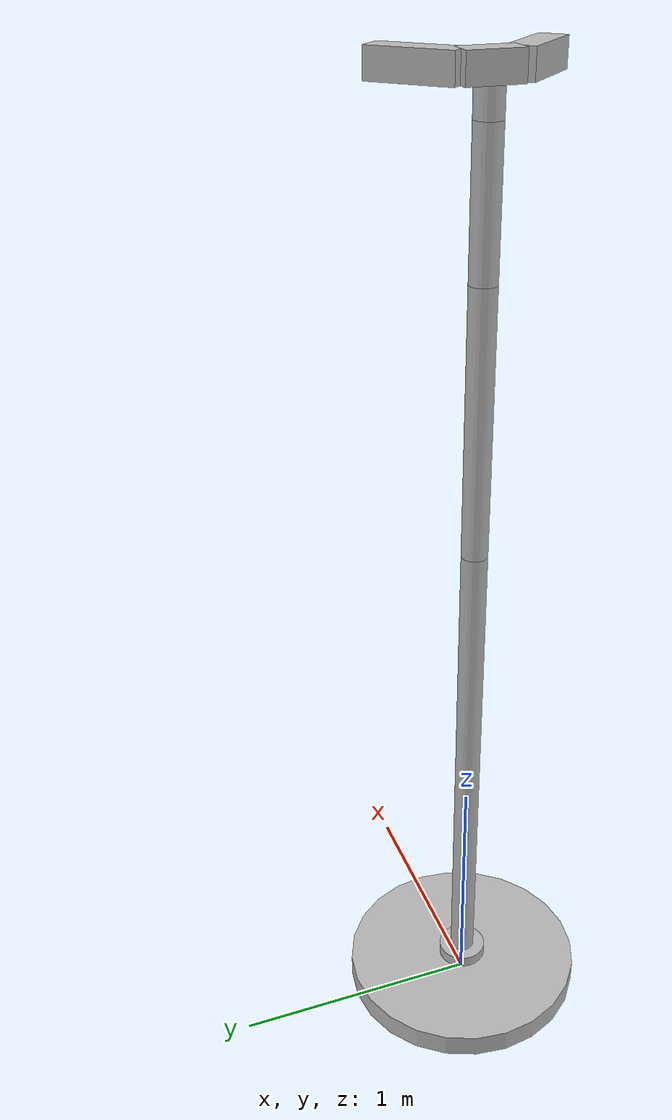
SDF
<?xml version="1.0"?>
<sdf version="1.7">
    <model name="arm_robot">
        <static>false </static>
        <self_collide>1</self_collide>

        <link name='base'>
            <pose>0 0 .05 0 0 0</pose>
            <inertial>
                <pose>0 0 0.5 0 0 0</pose>
                <inertia>
                    <ixx>1</ixx>
                    <ixy>0</ixy>
                    <ixz>0</ixz>
                    <iyy>1</iyy>
                    <iyz>0</iyz>
                    <izz>1</izz>
                </inertia>
                <mass>50.0</mass>
            </inertial>
            <collision name='collision'>
                <geometry>
                    <cylinder>
                        <radius>.5</radius>
                        <length>.1</length>
                    </cylinder>
                </geometry>
            </collision>
            <visual name='visual'>
                <geometry>
                    <cylinder>
                        <radius>.5</radius>
                        <length>.1</length>
                    </cylinder>
                </geometry>
            </visual>
        </link>
        <link name='arm1'>
            <pose>0 0 .125 0 0 0</pose>
            <gravity>0</gravity>
            <inertial>
                <pose>0 0 0.125 0 0 0</pose>
                <inertia>
                    <ixx>1</ixx>
                    <ixy>0</ixy>
                    <ixz>0</ixz>
                    <iyy>1</iyy>
                    <iyz>0</iyz>
                    <izz>1</izz>
                </inertia>
                <mass>.05</mass>
            </inertial>
            <collision name='collision'>
                <geometry>
                    <cylinder>
                        <radius>.1</radius>
                        <length>.05</length>
                    </cylinder>
                </geometry>
            </collision>
            <visual name='visual'>
                <geometry>
                    <cylinder>
                        <radius>.1</radius>
                        <length>.05</length>
                    </cylinder>
                </geometry>
            </visual>
        </link>
        <link name='arm2'>
            <pose>0 0 1.15 0 0 0</pose>
            <gravity>0</gravity>
            <inertial>
                <pose>0 0 1.15 0 0 0</pose>
                <inertia>
                    <ixx>1</ixx>
                    <ixy>0</ixy>
                    <ixz>0</ixz>
                    <iyy>1</iyy>
                    <iyz>0</iyz>
                    <izz>1</izz>
                </inertia>
                <mass>2</mass>
            </inertial>
            <collision name='collision'>
                <geometry>
                    <cylinder>
                        <radius>.05</radius>
                        <length>2.0</length>
                    </cylinder>
                </geometry>
            </collision>
            <visual name='visual'>
                <geometry>
                    <cylinder>
                        <radius>.05</radius>
                        <length>2.0</length>
                    </cylinder>
                </geometry>
            </visual>
        </link>
        <link name='arm3'>
            <pose>0 0 2.65 0 0 0</pose>
            <gravity>0</gravity>
            <inertial>
                <pose>0 0 2.65 0 0 0</pose>
                <inertia>
                    <ixx>1</ixx>
                    <ixy>0</ixy>
                    <ixz>0</ixz>
                    <iyy>1</iyy>
                    <iyz>0</iyz>
                    <izz>1</izz>
                </inertia>
                <mass>1</mass>
            </inertial>
            <collision name='collision'>
                <geometry>
                    <cylinder>
                        <radius>.05</radius>
                        <length>1.0</length>
                    </cylinder>
                </geometry>
            </collision>
            <visual name='visual'>
                <geometry>
                    <cylinder>
                        <radius>.05</radius>
                        <length>1.0</length>
                    </cylinder>
                </geometry>
            </visual>
        </link>
        <link name='arm4'>
            <pose>0 0 3.4 0 0 0</pose>
            <gravity>0</gravity>
            <inertial>
                <pose>0 0 3.4 0 0 0</pose>
                <inertia>
                    <ixx>1</ixx>
                    <ixy>0</ixy>
                    <ixz>0</ixz>
                    <iyy>1</iyy>
                    <iyz>0</iyz>
                    <izz>1</izz>
                </inertia>
                <mass>.5</mass>
            </inertial>
            <collision name='collision'>
                <geometry>
                    <cylinder>
                        <radius>.05</radius>
                        <length>0.5</length>
                    </cylinder>
                </geometry>
            </collision>
            <visual name='visual'>
                <geometry>
                    <cylinder>
                        <radius>.05</radius>
                        <length>0.5</length>
                    </cylinder>
                </geometry>
            </visual>
        </link>
       <link name='arm5'>
            <pose>0 0 3.7 0 0 0</pose>
            <gravity>0</gravity>
            <inertial>
                <pose>0 0 3.7 0 0 0</pose>
                <inertia>
                    <ixx>1</ixx>
                    <ixy>0</ixy>
                    <ixz>0</ixz>
                    <iyy>1</iyy>
                    <iyz>0</iyz>
                    <izz>1</izz>
                </inertia>
                <mass>.5</mass>
            </inertial>
            <collision name='collision'>
                <geometry>
                    <cylinder>
                        <radius>.05</radius>
                        <length>0.1</length>
                    </cylinder>
                </geometry>
            </collision>
            <visual name='visual'>
                <geometry>
                    <cylinder>
                        <radius>.05</radius>
                        <length>0.1</length>
                    </cylinder>
                </geometry>
            </visual>
        </link>
        <joint type="revolute" name="base_arm1_joint">
            <pose>0 0 -0.025 0 0 0</pose>
            <child>arm1</child>
            <parent>base</parent>
            <axis>
                <xyz>0 0 1</xyz>
            </axis>
        </joint>
        <joint type="revolute" name="arm1_arm2_joint">
            <pose>0 0 -1 0 0 0</pose>
            <child>arm2</child>
            <parent>arm1</parent>
            <axis>
                <xyz>1 0 0</xyz>
                <dynamics>
                     <damping>1.0</damping>
                     <friction>0.3</friction>
                     <limit>
                        <lower>-1.0</lower>
                        <upper>1.0</upper>
                        <effort>40</effort>
                        <velocity>1.0</velocity>
                     </limit>
                </dynamics>
            </axis>
        </joint>
        <joint type="revolute" name="arm2_arm3_joint">
            <pose>0 0 -0.5 0 0 0</pose>
            <child>arm3</child>
            <parent>arm2</parent>
            <axis>
                <xyz>1 0 0</xyz>
                <dynamics>
                     <damping>1.0</damping>
                     <friction>0.3</friction>
                     <limit>
                        <lower>-1.0</lower>
                        <upper>1.0</upper>
                        <effort>40</effort>
                        <velocity>1.0</velocity>
                     </limit>
                </dynamics>
            </axis>
        </joint>
        <joint type="revolute" name="arm3_arm4_joint">
            <pose>0 0 -0.25 0 0 0</pose>
            <child>arm4</child>
            <parent>arm3</parent>
            <axis>
                <xyz>1 0 0</xyz>
                <dynamics>
                     <damping>1.0</damping>
                     <friction>0.3</friction>
                     <limit>
                        <lower>-1.0</lower>
                        <upper>1.0</upper>
                        <effort>40</effort>
                        <velocity>1.0</velocity>
                     </limit>
                </dynamics>
            </axis>
        </joint>
         <joint type="revolute" name="arm4_arm5_joint">
            <pose>0 0 -0.05 0 0 0</pose>
            <child>arm5</child>
            <parent>arm4</parent>
            <axis>
                <xyz>0 1 0</xyz>
                <dynamics>
                     <damping>1.0</damping>
                     <friction>0.3</friction>
                     <limit>
                        <lower>-1.0</lower>
                        <upper>1.0</upper>
                        <effort>40</effort>
                        <velocity>1.0</velocity>
                     </limit>
                </dynamics>
            </axis>

        </joint>

         <joint type="revolute" name="arm5_palm_joint">
            <pose>0 0 -0.5 0 0 0</pose>
            <child>palm</child>
            <parent>arm5</parent>
            <axis>

                <xyz>0 0 1</xyz>
                <dynamics>

                     <limit>
                        <lower>-1.0</lower>
                        <upper>1.0</upper>

                     </limit>
                </dynamics>
            </axis>

        </joint>
        <link name="palm">
            <pose>0.0 0.0 3.8 0 0 0</pose>
            <inertial>
                <inertia>
                    <ixx>0.01</ixx>
                    <ixy>0</ixy>
                    <ixz>0</ixz>
                    <iyy>0.01</iyy>
                    <iyz>0</iyz>
                    <izz>0.01</izz>
                </inertia>
                <mass>0.5</mass>
            </inertial>
            <collision name="collision">
                <geometry>
                    <box>
                        <size>0.1 0.2 0.1</size>
                    </box>
                </geometry>
            </collision>
            <visual name="visual">
                <geometry>
                    <box>
                        <size>0.1 0.2 0.1</size>
                    </box>
                </geometry>
                <material>
                    <script>Gazebo/Red</script>
                </material>
            </visual>
        </link>
        <link name="left_finger">
            <pose>0.1 0.2 3.8 0 0 -0.78539</pose>
            <inertial>
                <inertia>
                    <ixx>0.01</ixx>
                    <ixy>0</ixy>
                    <ixz>0</ixz>
                    <iyy>0.01</iyy>
                    <iyz>0</iyz>
                    <izz>0.01</izz>
                </inertia>
                <mass>0.1</mass>
            </inertial>
            <collision name="collision">
                <geometry>
                    <box>
                        <size>0.1 0.3 0.1</size>
                    </box>
                </geometry>
            </collision>
            <visual name="visual">
                <geometry>
                    <box>
                        <size>0.1 0.3 0.1</size>
                    </box>
                </geometry>
                <material>
                    <script>Gazebo/Blue</script>
                </material>
            </visual>
        </link>
        <link name="right_finger">
            <pose>0.1 -0.2 3.8 0 0 .78539</pose>
            <inertial>
                <inertia>
                    <ixx>0.01</ixx>
                    <ixy>0</ixy>
                    <ixz>0</ixz>
                    <iyy>0.01</iyy>
                    <iyz>0</iyz>
                    <izz>0.01</izz>
                </inertia>
                <mass>0.1</mass>
            </inertial>
            <collision name="collision">
                <geometry>
                    <box>
                        <size>0.1 0.3 0.1</size>
                    </box>
                </geometry>
            </collision>
            <visual name="visual">
                <geometry>
                    <box>
                        <size>0.1 0.3 0.1</size>
                    </box>
                </geometry>
                <material>
                    <script>Gazebo/Green</script>
                </material>
            </visual>
        </link>

            <joint name="palm_left_finger" type="revolute">
            <pose>0 -0.15 0 0 0 0</pose>
            <child>left_finger</child>
            <parent>palm</parent>
            <axis>
                <damping>1.0</damping>
                     <friction>0.3</friction>
                     <limit>
                        <lower>-1.0</lower>
                        <upper>1.0</upper>
                        <effort>40</effort>
                        <velocity>1.0</velocity>
                     </limit>
                <xyz>0 0 1</xyz>
            </axis>
        </joint>

        <joint name="palm_right_finger" type="revolute">
            <pose>0 0.15 0 0 0 0</pose>
            <child>right_finger</child>
            <parent>palm</parent>
            <axis>
                <damping>1.0</damping>
                     <friction>0.3</friction>
                     <limit>
                        <lower>-1.0</lower>
                        <upper>1.0</upper>
                        <effort>40</effort>
                        <velocity>1.0</velocity>
                     </limit>
                <xyz>0 0 1</xyz>
            </axis>
        </joint>

        <plugin name="libarm_model_plugin" filename="libarm_model_plugin.so" />
        <plugin name="libgripper_plugin" filename="libgripper_plugin.so" />

    </model>
</sdf>
